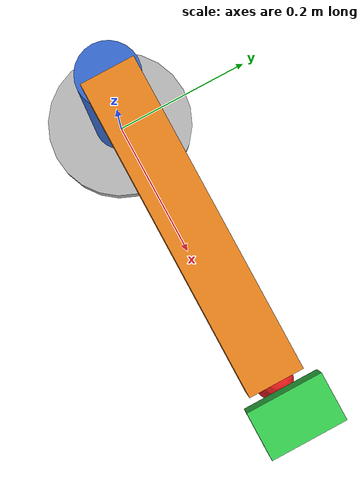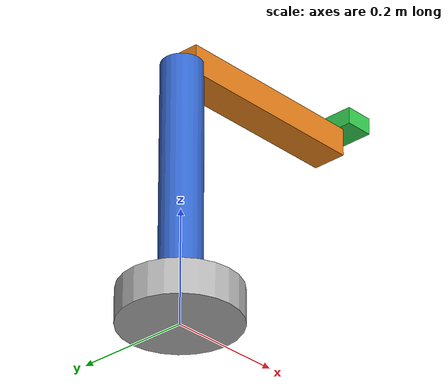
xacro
<?xml version="1.0"?>
<robot name="simple_arm" xmlns:xacro="http://www.ros.org/wiki/xacro">

  <xacro:property name="base_radius" value="0.10"/>
  <xacro:property name="base_height" value="0.06"/>
  <xacro:property name="column_height" value="0.40"/>
  <xacro:property name="arm_length" value="0.35"/>
  <xacro:property name="arm_width" value="0.06"/>
  <xacro:property name="arm_thickness" value="0.05"/>

  <material name="grey">
    <color rgba="0.7 0.7 0.7 1.0"/>
  </material>
  <material name="blue">
    <color rgba="0.2 0.4 0.8 1.0"/>
  </material>
  <material name="orange">
    <color rgba="0.9 0.5 0.1 1.0"/>
  </material>
  <material name="green">
    <color rgba="0.2 0.8 0.3 1.0"/>
  </material>
  <material name="red">
    <color rgba="0.9 0.1 0.1 1.0"/>
  </material>

  <link name="world"/>

  <link name="base_link">
    <inertial>
      <origin xyz="0 0 ${base_height/2}" rpy="0 0 0"/>
      <mass value="2.0"/>
      <inertia ixx="0.0056" ixy="0" ixz="0"
               iyy="0.0056" iyz="0" izz="0.0100"/>
    </inertial>
    <visual>
      <origin xyz="0 0 ${base_height/2}" rpy="0 0 0"/>
      <geometry>
        <cylinder radius="${base_radius}" length="${base_height}"/>
      </geometry>
      <material name="grey"/>
    </visual>
    <collision>
      <origin xyz="0 0 ${base_height/2}" rpy="0 0 0"/>
      <geometry>
        <cylinder radius="${base_radius}" length="${base_height}"/>
      </geometry>
    </collision>
  </link>

  <joint name="world_joint" type="fixed">
    <parent link="world"/>
    <child link="base_link"/>
    <origin xyz="0 0 0" rpy="0 0 0"/>
  </joint>

  <joint name="joint1" type="revolute">
    <parent link="base_link"/>
    <child link="link1"/>
    <origin xyz="0 0 ${base_height}" rpy="0 0 0"/>
    <axis xyz="0 0 1"/>
    <limit lower="-2.967" upper="2.967" effort="30" velocity="1.5"/>
    <dynamics damping="0.5" friction="0.1"/>
  </joint>

  <link name="link1">
    <inertial>
      <origin xyz="0 0 ${column_height/2}" rpy="0 0 0"/>
      <mass value="1.0"/>
      <inertia ixx="0.01364" ixy="0" ixz="0"
               iyy="0.01364" iyz="0" izz="0.0006125"/>
    </inertial>
    <visual>
      <origin xyz="0 0 ${column_height/2}" rpy="0 0 0"/>
      <geometry>
        <cylinder radius="0.035" length="${column_height}"/>
      </geometry>
      <material name="blue"/>
    </visual>
    <collision>
      <origin xyz="0 0 ${column_height/2}" rpy="0 0 0"/>
      <geometry>
        <cylinder radius="0.035" length="${column_height}"/>
      </geometry>
    </collision>
  </link>

  <joint name="joint2" type="revolute">
    <parent link="link1"/>
    <child link="link2"/>
    <origin xyz="0 0 ${column_height}" rpy="0 0 0"/>
    <axis xyz="0 1 0"/>
    <limit lower="-2.0" upper="2.0" effort="30" velocity="1.5"/>
    <dynamics damping="0.5" friction="0.1"/>
  </joint>

  <link name="link2">
    <inertial>
      <origin xyz="${arm_length/2} 0 0" rpy="0 0 0"/>
      <mass value="0.8"/>
      <inertia ixx="0.0004067" ixy="0" ixz="0"
               iyy="0.0083333" iyz="0" izz="0.0084067"/>
    </inertial>
    <visual>
      <origin xyz="${arm_length/2} 0 0" rpy="0 0 0"/>
      <geometry>
        <box size="${arm_length} ${arm_width} ${arm_thickness}"/>
      </geometry>
      <material name="orange"/>
    </visual>
    <collision>
      <origin xyz="${arm_length/2} 0 0" rpy="0 0 0"/>
      <geometry>
        <box size="${arm_length} ${arm_width} ${arm_thickness}"/>
      </geometry>
    </collision>
  </link>

  <joint name="tool_joint" type="fixed">
    <parent link="link2"/>
    <child link="tool0"/>
    <origin xyz="${arm_length} 0 0" rpy="0 0 0"/>
  </joint>

  <link name="tool0">
    <inertial>
      <mass value="0.1"/>
      <inertia ixx="0.000016" ixy="0" ixz="0"
               iyy="0.000016" iyz="0" izz="0.000016"/>
    </inertial>
    <visual>
      <geometry>
        <sphere radius="0.02"/>
      </geometry>
      <material name="red"/>
    </visual>
  </link>

  <joint name="camera_joint" type="fixed">
    <parent link="tool0"/>
    <child link="camera_link"/>
    <origin xyz="0.03 0 0.05" rpy="0 0 0"/>
  </joint>

  <link name="camera_link">
    <inertial>
      <mass value="0.2"/>
      <inertia ixx="0.0001217" ixy="0" ixz="0"
               iyy="0.0000567" iyz="0" izz="0.0001483"/>
    </inertial>
    <visual>
      <geometry>
        <box size="0.05 0.08 0.03"/>
      </geometry>
      <material name="green"/>
    </visual>
    <collision>
      <geometry>
        <box size="0.05 0.08 0.03"/>
      </geometry>
    </collision>
  </link>

  <joint name="camera_optical_joint" type="fixed">
    <parent link="camera_link"/>
    <child link="camera_optical_frame"/>
    <origin xyz="0 0 0" rpy="-1.5707963 0 -1.5707963"/>
  </joint>

  <link name="camera_optical_frame"/>

  <gazebo reference="base_link">
    <material>Gazebo/Grey</material>
  </gazebo>
  <gazebo reference="link1">
    <material>Gazebo/Blue</material>
  </gazebo>
  <gazebo reference="link2">
    <material>Gazebo/Orange</material>
  </gazebo>
  <gazebo reference="tool0">
    <material>Gazebo/Red</material>
  </gazebo>
  <gazebo reference="camera_link">
    <material>Gazebo/Green</material>
  </gazebo>

  <ros2_control name="GazeboSystem" type="system">
    <hardware>
      <plugin>gazebo_ros2_control/GazeboSystem</plugin>
    </hardware>

    <joint name="joint1">
      <command_interface name="position"/>
      <state_interface name="position"/>
      <state_interface name="velocity"/>
    </joint>

    <joint name="joint2">
      <command_interface name="position"/>
      <state_interface name="position"/>
      <state_interface name="velocity"/>
    </joint>
  </ros2_control>

  <gazebo>
    <plugin filename="libgazebo_ros2_control.so" name="gazebo_ros2_control">
      <parameters>$(find arm_description)/config/controllers.yaml</parameters>
    </plugin>
  </gazebo>

</robot>
